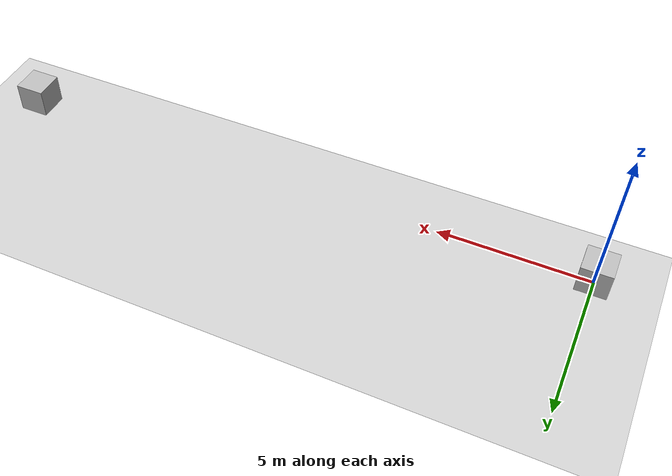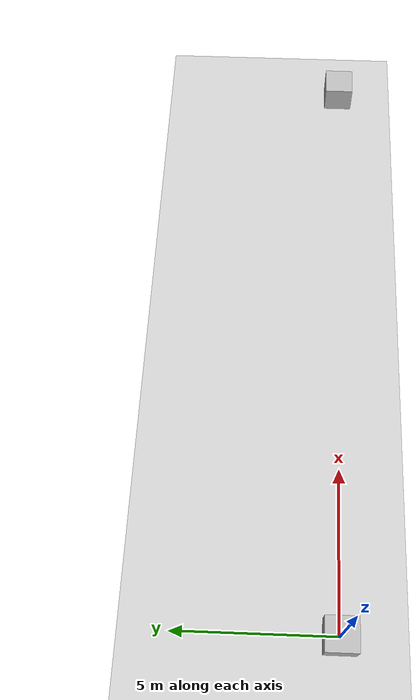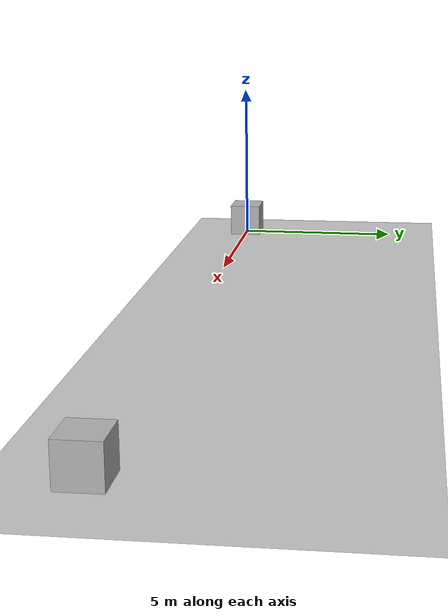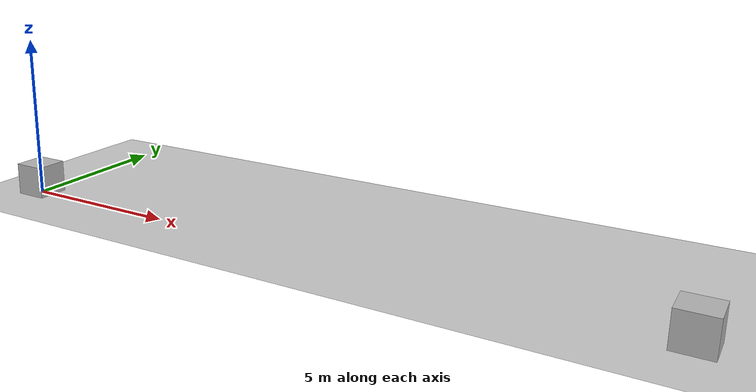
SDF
<?xml version="1.0"?>
<sdf version="1.4">
  <world name="default">
    <!-- Ground Plane -->
    <include>
      <uri>model://ground_plane</uri>
    </include>

    <include>
      <uri>model://sun</uri>
    </include>

    <model name="shuttlebus">
      <pose>0 0 0.5 0 0 0</pose>
      <link name="link">
        <collision name="shuttlebus_collision">
          <geometry>
            <box>
              <size>1 1 1</size>
            </box>
          </geometry>
        </collision>

        <visual name="visual">
          <geometry>
            <box>
              <size>1 1 1</size>
            </box>
          </geometry>
        </visual>

         <sensor name='my_contact' type='contact'>
           <plugin name="collide" filename="libcollide.so"/>
           <contact>
             <collision>shuttlebus_collision</collision>
           </contact>
         </sensor>
      </link>

      <plugin name="model_push_ros2" filename="libmodel_push_ros2.so">
      <velocity>25</velocity>
      </plugin>

    </model>

<model name="tree">
        <pose>20 0 0.5 0 0 0</pose>
      <link name="link">

        <collision name="tree_collision">
          <geometry>
            <box>
              <size>1 1 1</size>
            </box>
          </geometry>
        </collision>

        <visual name="visual">
          <geometry>
            <box>
              <size>1 1 1</size>
            </box>
          </geometry>
        </visual>
      </link>
            <static>1</static>
    </model>

  </world>
</sdf>
